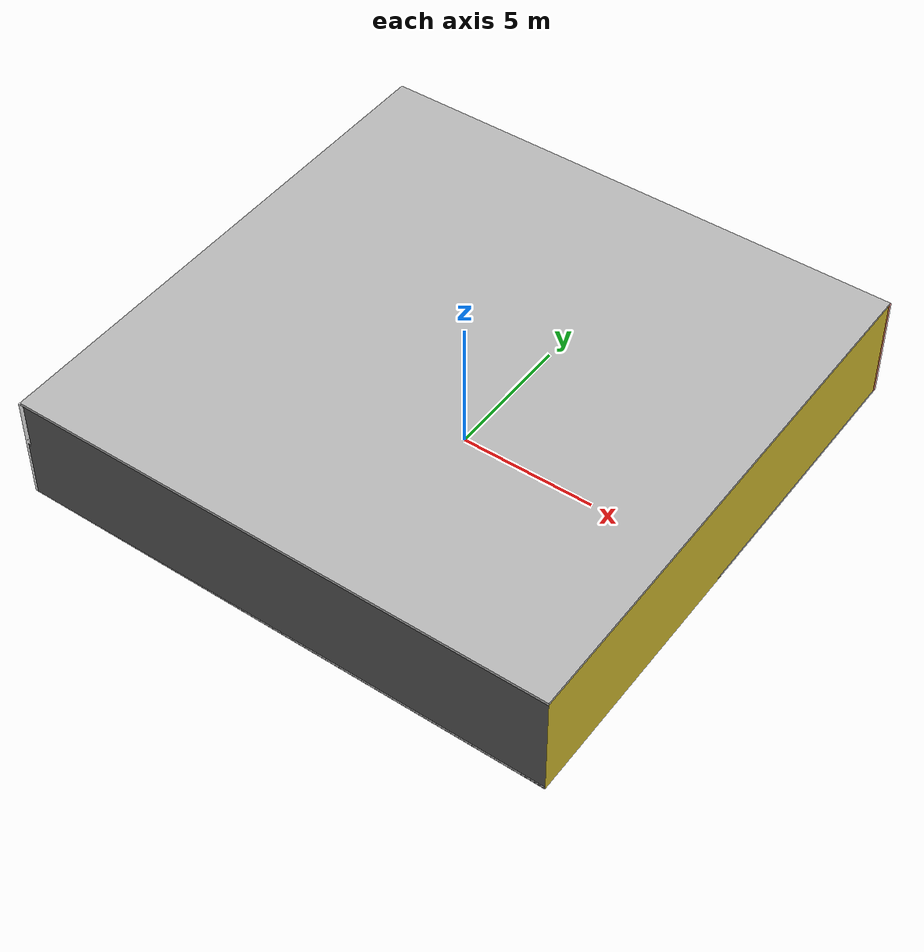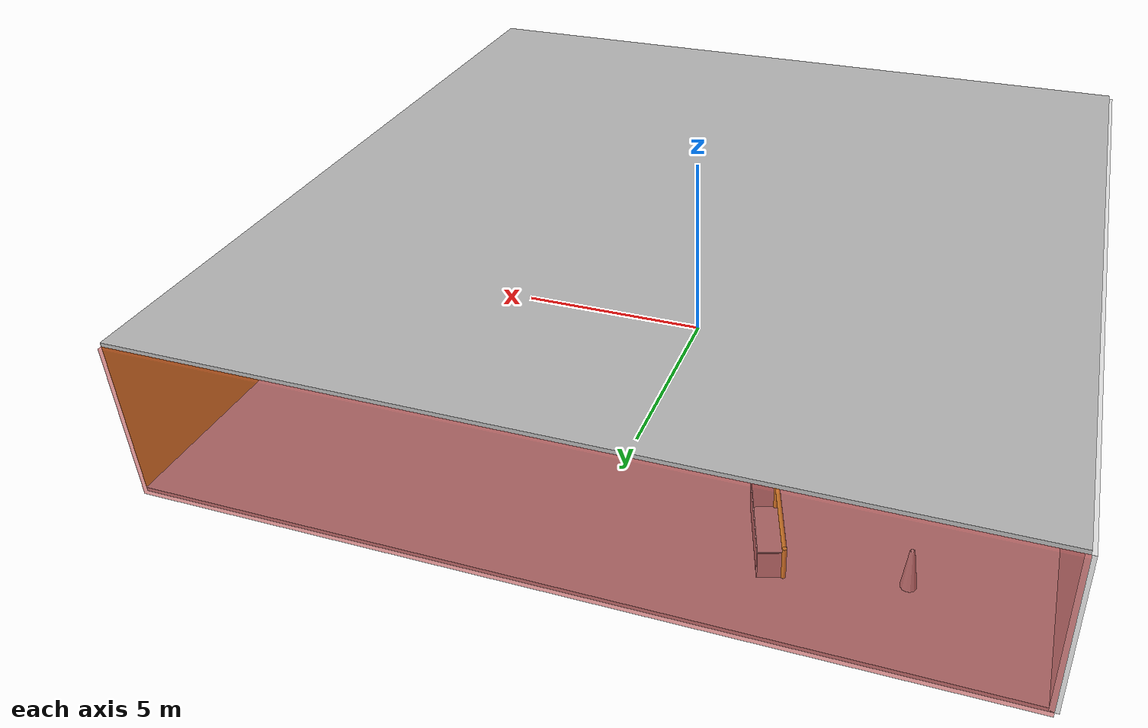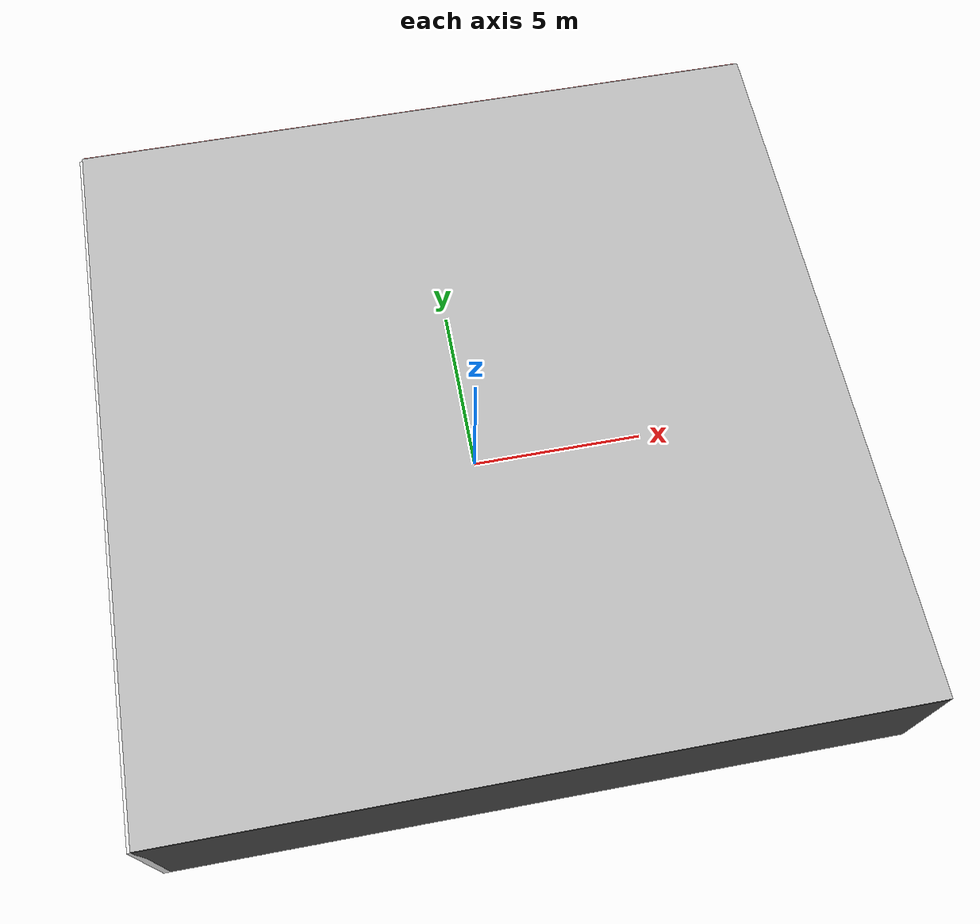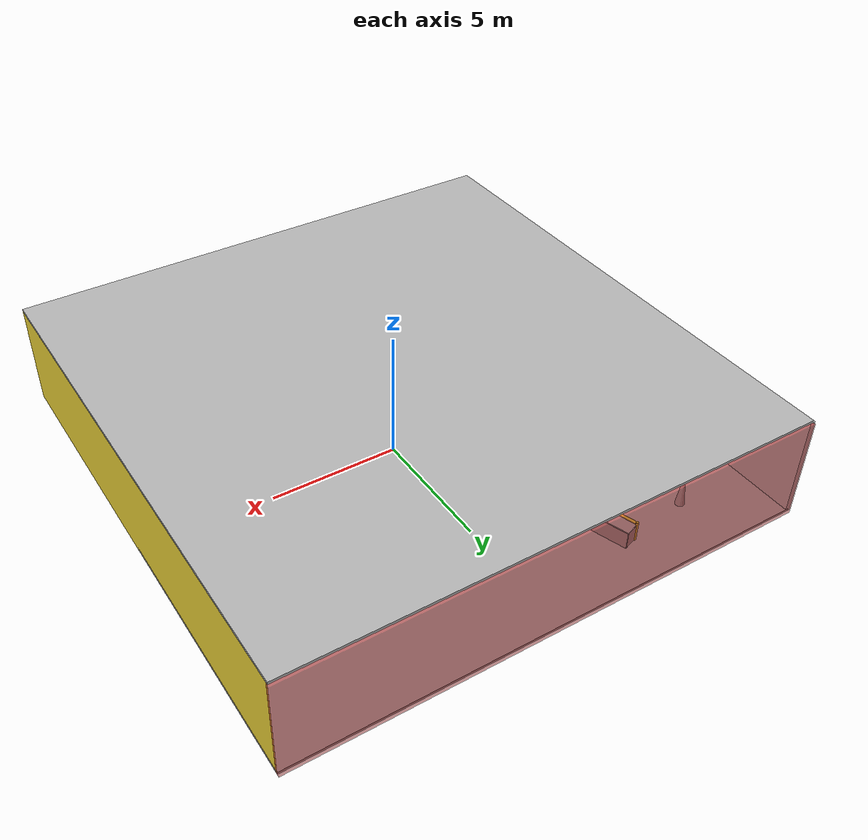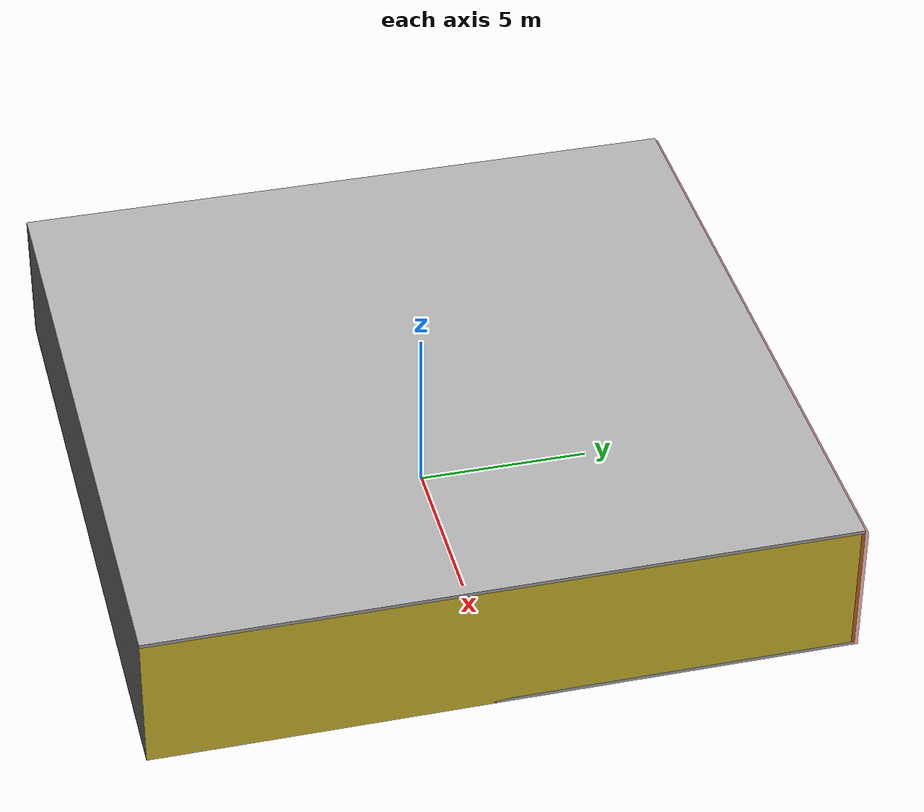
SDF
<sdf version="1.4">
 <world name="default">
  <physics type="ode">
   <max_step_size>0.001</max_step_size>
   <real_time_factor>1</real_time_factor>
   <real_time_update_rate>1000</real_time_update_rate>
   <gravity>0 0 -9.8</gravity>
  </physics>
  <scene><ambient>0.4 0.4 0.4 1</ambient><background>0.7 0.7 0.7 1</background><shadows>1</shadows></scene>
  <model name="Surrounding">
   <static>1</static>
   <link name="Ceiling">
    <collision name="Ceiling_Collision"><geometry><box><size>20 20 0.1</size></box></geometry></collision>
    <visual name="Ceiling_Visual">
     <geometry><box><size>20 20 0.1</size></box></geometry>
     <material>
      <script><uri>file://media/materials/scripts/gazebo.material</uri><name>Gazebo/LightOff</name></script>
     </material>
    </visual>
    <pose>0 0 4.05 0 0 0</pose>
   </link>
   <link name="Wall_South">
    <collision name="Wall_South_Collision">
     <geometry><box><size>20 0 4</size></box></geometry>
     <pose>0 0 2 0 -0 0</pose>
    </collision>
    <visual name="Wall_South_Visual">
     <pose>0 0 2 0 -0 0</pose>
     <geometry><box><size>20 0 4</size></box></geometry>
     <material>
      <script><uri>file://media/materials/scripts/gazebo.material</uri><name>Gazebo/Road</name></script>
     </material>
    </visual>
    <velocity_decay><linear>0</linear><angular>0</angular></velocity_decay>
    <pose>0 -10 0 0 -0 0</pose>
   </link>
   <link name="Wall_East">
    <collision name="Wall_21_Collision">
     <geometry><box><size>20 0 4</size></box></geometry>
     <pose>0 0 2 0 -0 0</pose>
    </collision>
    <visual name="Wall_21_Visual">
     <pose>0 0 2 0 -0 0</pose>
     <geometry><box><size>20 0 4</size></box></geometry>
     <material>
      <script><uri>file://media/materials/scripts/gazebo.material</uri><name>Gazebo/ZincYellow</name></script>
     </material>
    </visual>
    <velocity_decay><linear>0</linear><angular>0</angular></velocity_decay>
    <pose>10 0 0 0 -0 1.5708</pose>
   </link>
   <link name="Wall_North">
    <collision name="Wall_22_Collision">
     <geometry><box><size>20 0.2 4</size></box></geometry>
     <pose>0 0 2 0 -0 0</pose>
    </collision>
    <visual name="Wall_22_Visual">
     <pose>0 0 2 0 -0 0</pose>
     <geometry><box><size>20 0.2 4</size></box></geometry>
     <material>
      <script><uri>file://media/materials/scripts/gazebo.material</uri><name>Gazebo/RedTransparent</name></script>
     </material>
    </visual>
    <velocity_decay><linear>0</linear><angular>0</angular></velocity_decay>
    <pose>0 10 0 0 -0 0</pose>
   </link>
   <link name="Wall_West">
    <collision name="Wall_23_Collision">
     <geometry><box><size>20 0.2 4</size></box></geometry>
     <pose>0 0 2 0 -0 0</pose>
    </collision>
    <visual name="Wall_23_Visual">
     <pose>0 0 2 0 -0 0</pose>
     <geometry><box><size>20 0.2 4</size></box></geometry>
     <material>
      <script><uri>file://media/materials/scripts/gazebo.material</uri><name>Gazebo/WhiteGlow</name></script>
     </material>
    </visual>
    <velocity_decay><linear>0</linear><angular>0</angular></velocity_decay>
    <pose>-10 0 0 0 0 -1.5708</pose>
   </link>
   <link name="Ground_link">
    <collision name="collision">
     <pose>0 0 .05 0 -0 0</pose>
     <geometry><box><size>20 20 0.1</size></box></geometry>
    </collision>
    <visual name="visual">
     <pose>0 0 .05 0 -0 0</pose>
     <geometry><box><size>20 20 0.1</size></box></geometry>
     <material>
      <script><uri>file://media/materials/scripts/gazebo.material</uri><name>Gazebo/JointAnchor</name></script>
     </material>
    </visual>
   </link>
   <static>1</static>
  </model>
  <spherical_coordinates>
   <surface_model>EARTH_WGS84</surface_model>
   <latitude_deg>0</latitude_deg>
   <longitude_deg>0</longitude_deg>
   <elevation>0</elevation>
   <heading_deg>0</heading_deg>
  </spherical_coordinates>
  <light name="lightball_0" type="diffuse">
   <diffuse>0.8 0.8 0.8 1</diffuse>
   <specular>0.2 0.2 0.2 1</specular>
   <attenuation>
    <range>100</range>
    <constant>0.7</constant>
    <linear>0.01</linear>
    <quadratic>0.001</quadratic>
   </attenuation>
   <direction>-0.5 0.1 -0.9</direction>
   <pose>6.33025719886 -3.79489355418 3.47043424194 0 0 0</pose>
  </light>
  <light name="lightball_1" type="diffuse">
   <diffuse>0.8 0.8 0.8 1</diffuse>
   <specular>0.2 0.2 0.2 1</specular>
   <attenuation>
    <range>100</range>
    <constant>0.7</constant>
    <linear>0.01</linear>
    <quadratic>0.001</quadratic>
   </attenuation>
   <direction>-0.5 0.1 -0.9</direction>
   <pose>4.43413883532 4.91527111033 3.42931840254 0 0 0</pose>
  </light>
  <light name="lightball_2" type="diffuse">
   <diffuse>0.8 0.8 0.8 1</diffuse>
   <specular>0.2 0.2 0.2 1</specular>
   <attenuation>
    <range>100</range>
    <constant>0.7</constant>
    <linear>0.01</linear>
    <quadratic>0.001</quadratic>
   </attenuation>
   <direction>-0.5 0.1 -0.9</direction>
   <pose>-3.25845265102 1.5853432902 3.5491640003 0 0 0</pose>
  </light>
  <light name="lightball_3" type="diffuse">
   <diffuse>0.8 0.8 0.8 1</diffuse>
   <specular>0.2 0.2 0.2 1</specular>
   <attenuation>
    <range>100</range>
    <constant>0.7</constant>
    <linear>0.01</linear>
    <quadratic>0.001</quadratic>
   </attenuation>
   <direction>-0.5 0.1 -0.9</direction>
   <pose>-1.00716344959 3.91851382599 2.81964072328 0 0 0</pose>
  </light>
  <light name="lightball_4" type="diffuse">
   <diffuse>0.8 0.8 0.8 1</diffuse>
   <specular>0.2 0.2 0.2 1</specular>
   <attenuation>
    <range>100</range>
    <constant>0.7</constant>
    <linear>0.01</linear>
    <quadratic>0.001</quadratic>
   </attenuation>
   <direction>-0.5 0.1 -0.9</direction>
   <pose>6.5880117852 -0.309836805932 0.518855122626 0 0 0</pose>
  </light>
  <light name="lightball_5" type="diffuse">
   <diffuse>0.8 0.8 0.8 1</diffuse>
   <specular>0.2 0.2 0.2 1</specular>
   <attenuation>
    <range>100</range>
    <constant>0.7</constant>
    <linear>0.01</linear>
    <quadratic>0.001</quadratic>
   </attenuation>
   <direction>-0.5 0.1 -0.9</direction>
   <pose>-2.56542050036 4.62892108128 2.29940630748 0 0 0</pose>
  </light>
  <light name="lightball_6" type="diffuse">
   <diffuse>0.8 0.8 0.8 1</diffuse>
   <specular>0.2 0.2 0.2 1</specular>
   <attenuation>
    <range>100</range>
    <constant>0.7</constant>
    <linear>0.01</linear>
    <quadratic>0.001</quadratic>
   </attenuation>
   <direction>-0.5 0.1 -0.9</direction>
   <pose>9.12350846819 -2.69246186129 3.4586237958 0 0 0</pose>
  </light>
  <light name="lightball_7" type="diffuse">
   <diffuse>0.8 0.8 0.8 1</diffuse>
   <specular>0.2 0.2 0.2 1</specular>
   <attenuation>
    <range>100</range>
    <constant>0.7</constant>
    <linear>0.01</linear>
    <quadratic>0.001</quadratic>
   </attenuation>
   <direction>-0.5 0.1 -0.9</direction>
   <pose>-5.35034318157 -7.77112834932 2.95120816291 0 0 0</pose>
  </light>
  <light name="lightball_8" type="diffuse">
   <diffuse>0.8 0.8 0.8 1</diffuse>
   <specular>0.2 0.2 0.2 1</specular>
   <attenuation>
    <range>100</range>
    <constant>0.7</constant>
    <linear>0.01</linear>
    <quadratic>0.001</quadratic>
   </attenuation>
   <direction>-0.5 0.1 -0.9</direction>
   <pose>-4.48441329802 9.86526645748 1.58490935672 0 0 0</pose>
  </light>
  <light name="lightball_9" type="diffuse">
   <diffuse>0.8 0.8 0.8 1</diffuse>
   <specular>0.2 0.2 0.2 1</specular>
   <attenuation>
    <range>100</range>
    <constant>0.7</constant>
    <linear>0.01</linear>
    <quadratic>0.001</quadratic>
   </attenuation>
   <direction>-0.5 0.1 -0.9</direction>
   <pose>2.7051163439 6.89907767541 1.46822667801 0 0 0</pose>
  </light>
  <light name="lightball_10" type="diffuse">
   <diffuse>0.8 0.8 0.8 1</diffuse>
   <specular>0.2 0.2 0.2 1</specular>
   <attenuation>
    <range>100</range>
    <constant>0.7</constant>
    <linear>0.01</linear>
    <quadratic>0.001</quadratic>
   </attenuation>
   <direction>-0.5 0.1 -0.9</direction>
   <pose>3.60325159 -5.30909979492 0.611992849392 0 0 0</pose>
  </light>
  <light name="lightball_11" type="diffuse">
   <diffuse>0.8 0.8 0.8 1</diffuse>
   <specular>0.2 0.2 0.2 1</specular>
   <attenuation>
    <range>100</range>
    <constant>0.7</constant>
    <linear>0.01</linear>
    <quadratic>0.001</quadratic>
   </attenuation>
   <direction>-0.5 0.1 -0.9</direction>
   <pose>-4.37354606607 -0.649377477477 2.14306826535 0 0 0</pose>
  </light>
  <light name="lightball_12" type="diffuse">
   <diffuse>0.8 0.8 0.8 1</diffuse>
   <specular>0.2 0.2 0.2 1</specular>
   <attenuation>
    <range>100</range>
    <constant>0.7</constant>
    <linear>0.01</linear>
    <quadratic>0.001</quadratic>
   </attenuation>
   <direction>-0.5 0.1 -0.9</direction>
   <pose>-0.984042185994 -8.24348125868 0.675842336592 0 0 0</pose>
  </light>
  <light name="lightball_13" type="diffuse">
   <diffuse>0.8 0.8 0.8 1</diffuse>
   <specular>0.2 0.2 0.2 1</specular>
   <attenuation>
    <range>100</range>
    <constant>0.7</constant>
    <linear>0.01</linear>
    <quadratic>0.001</quadratic>
   </attenuation>
   <direction>-0.5 0.1 -0.9</direction>
   <pose>0.392444374703 -6.50344139853 3.37526897547 0 0 0</pose>
  </light>
  <include><uri>model://cabinet</uri><pose>-8.06255515094 -7.81619008425 0 0 0 0.264876480496</pose></include>
  <include>
   <uri>model://robocup_3Dsim_goal</uri>
   <pose>-8.12718518491 1.02566275497 0 0 0 1.01190101743</pose>
  </include>
  <include>
   <uri>model://construction_cone</uri>
   <pose>-6.97086580249 7.79877108498 0 0 0 0.387297096726</pose>
  </include>
  <include><uri>model://cabinet</uri><pose>-4.20169855491 1.94232163405 0 0 0 0.859626931332</pose></include>
  <include>
   <uri>model://robocup_3Dsim_goal</uri>
   <pose>-4.12518669425 7.32582007275 0 0 0 0.323085528373</pose>
  </include>
  <include><uri>model://cabinet</uri><pose>-2.01753147302 -4.28888262099 0 0 0 2.79541309975</pose></include>
  <include><uri>model://cabinet</uri><pose>1.55332205277 4.13919092238 0 0 0 0.917292742984</pose></include>
  <include>
   <uri>model://construction_cone</uri>
   <pose>7.90637827802 5.2484936388 0 0 0 0.121408947638</pose>
  </include>
 </world>
</sdf>

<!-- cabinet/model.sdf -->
<sdf version="1.5">
  <model name="cabinet">
    <static>true</static>
    <link name="cabinet_bottom_plate">
      <inertial>
        <pose>0 0 -1 0 0 0</pose>
        <inertia>
          <ixx>2.050000</ixx>
          <ixy>0</ixy>
          <ixz>0</ixz>
          <iyy>2.050000</iyy>
          <iyz>0</iyz>
          <izz>2.050000</izz>
        </inertia>
        <mass>25.000000</mass>
      </inertial>
      <collision name="cabinet_bottom_plate_geom">
        <pose>0 0 0.010000 0 0 0</pose>
        <geometry>
          <box>
            <size>0.450000 0.450000 0.020000</size>
          </box>
        </geometry>
      </collision>
      <visual name="cabinet_bottom_plate_geom_visual">
        <pose>0 0 0.010000 0 0 0</pose>
        <geometry>
          <box>
            <size>0.450000 0.450000 0.020000</size>
          </box>
        </geometry>
        <material>
          <script>
            <uri>model://media/materials/scripts/gazebo.material</uri>
            <name>Gazebo/Wood</name>
          </script>
        </material>
      </visual>
      <collision name="cabinet_bottom_plate_geom_cabinet_back_plate">
        <pose>0.235000 0 0.510000 0 0 0</pose>
        <geometry>
          <box>
            <size>0.020000 0.450000 1.020000</size>
          </box>
        </geometry>
      </collision>
      <visual name="cabinet_bottom_plate_geom_cabinet_back_plate_visual">
        <pose>0.235000 0 0.510000 0 0 0</pose>
        <geometry>
          <box>
            <size>0.020000 0.450000 1.020000</size>
          </box>
        </geometry>
        <material>
          <script>
            <uri>model://media/materials/scripts/gazebo.material</uri>
            <name>Gazebo/Wood</name>
          </script>
        </material>
      </visual>
      <collision name="cabinet_bottom_plate_geom_cabinet_left_plate">
        <pose>0 0.235000 0.510000 0 0 0</pose>
        <geometry>
          <box>
            <size>0.450000 0.020000 1.020000</size>
          </box>
        </geometry>
      </collision>
      <visual name="cabinet_bottom_plate_geom_cabinet_left_plate_visual">
        <pose>0 0.235000 0.510000 0 0 0</pose>
        <geometry>
          <box>
            <size>0.450000 0.020000 1.020000</size>
          </box>
        </geometry>
        <material>
          <script>
            <uri>model://media/materials/scripts/gazebo.material</uri>
            <name>Gazebo/Wood</name>
          </script>
        </material>
      </visual>
      <collision name="cabinet_bottom_plate_geom_cabinet_middle_plate">
        <pose>0 0 0.510000 0 0 0</pose>
        <geometry>
          <box>
            <size>0.450000 0.450000 0.020000</size>
          </box>
        </geometry>
      </collision>
      <visual name="cabinet_bottom_plate_geom_cabinet_middle_plate_visual">
        <pose>0 0 0.510000 0 0 0</pose>
        <geometry>
          <box>
            <size>0.450000 0.450000 0.020000</size>
          </box>
        </geometry>
        <material>
          <script>
            <uri>model://media/materials/scripts/gazebo.material</uri>
            <name>Gazebo/Wood</name>
          </script>
        </material>
      </visual>
      <collision name="cabinet_bottom_plate_geom_cabinet_right_plate">
        <pose>0 -0.235000 0.510000 0 0 0</pose>
        <geometry>
          <box>
            <size>0.450000 0.020000 1.020000</size>
          </box>
        </geometry>
      </collision>
      <visual name="cabinet_bottom_plate_geom_cabinet_right_plate_visual">
        <pose>0 -0.235000 0.510000 0 0 0</pose>
        <geometry>
          <box>
            <size>0.450000 0.020000 1.020000</size>
          </box>
        </geometry>
        <material>
          <script>
            <uri>model://media/materials/scripts/gazebo.material</uri>
            <name>Gazebo/Wood</name>
          </script>
        </material>
      </visual>
      <collision name="cabinet_bottom_plate_geom_cabinet_top_plate">
        <pose>0 0 1.010000 0 0 0</pose>
        <geometry>
          <box>
            <size>0.450000 0.450000 0.020000</size>
          </box>
        </geometry>
      </collision>
      <visual name="cabinet_bottom_plate_geom_cabinet_top_plate_visual">
        <pose>0 0 1.010000 0 0 0</pose>
        <geometry>
          <box>
            <size>0.450000 0.450000 0.020000</size>
          </box>
        </geometry>
        <material>
          <script>
            <uri>model://media/materials/scripts/gazebo.material</uri>
            <name>Gazebo/Wood</name>
          </script>
        </material>
      </visual>
    </link>
  </model>
</sdf>

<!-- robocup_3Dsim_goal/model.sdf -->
<sdf version="1.5">
  <model name="robocup_3d_goal">
    <static>true</static>
    <link name="left_post">
      <pose>0 1.05 0.45 0 0 0</pose>
      <collision name="collision">
        <geometry>
          <cylinder>
            <radius>0.05</radius>
            <length>0.9</length>
          </cylinder>
        </geometry>
      </collision>
      <visual name="visual">
        <geometry>
          <cylinder>
            <radius>0.05</radius>
            <length>0.9</length>
          </cylinder>
        </geometry>
        <material>
          <script>
            <uri>file://media/materials/scripts/gazebo.material</uri>
            <name>Gazebo/ZincYellow</name>
          </script>
        </material>
      </visual>
    </link>
    <link name="left_support_horiz_lower">
      <pose>0.30 1.05 0.01 0 0 0</pose>
      <collision name="collision">
        <geometry>
          <box>
            <size>0.50 0.02 0.02</size>
          </box>
        </geometry>
      </collision>
      <visual name="visual">
        <geometry>
          <box>
            <size>0.50 0.02 0.02</size>
          </box>
        </geometry>
        <material>
          <script>
            <uri>file://media/materials/scripts/gazebo.material</uri>
            <name>Gazebo/White</name>
          </script>
        </material>
      </visual>
    </link>
    <link name="left_support_horiz_upper">
      <pose>0.30 1.05 0.79 0 0 0</pose>
      <collision name="collision">
        <geometry>
          <box>
            <size>0.50 0.02 0.02</size>
          </box>
        </geometry>
      </collision>
      <visual name="visual">
        <geometry>
          <box>
            <size>0.50 0.02 0.02</size>
          </box>
        </geometry>
        <material>
          <script>
            <uri>file://media/materials/scripts/gazebo.material</uri>
            <name>Gazebo/White</name>
          </script>
        </material>
      </visual>
    </link>
    <link name="left_support_vertical">
      <pose>0.56 1.05 0.4 0 1.5708 0</pose>
      <collision name="collision">
        <geometry>
          <box>
            <size>0.80 0.02 0.02</size>
          </box>
        </geometry>
      </collision>
      <visual name="visual">
        <geometry>
          <box>
            <size>0.80 0.02 0.02</size>
          </box>
        </geometry>
        <material>
          <script>
            <uri>file://media/materials/scripts/gazebo.material</uri>
            <name>Gazebo/White</name>
          </script>
        </material>
      </visual>
    </link>
    <link name="right_support_horiz_lower">
      <pose>0.30 -1.05 0.01 0 0 0</pose>
      <collision name="collision">
        <geometry>
          <box>
            <size>0.50 0.02 0.02</size>
          </box>
        </geometry>
      </collision>
      <visual name="visual">
        <geometry>
          <box>
            <size>0.50 0.02 0.02</size>
          </box>
        </geometry>
        <material>
          <script>
            <uri>file://media/materials/scripts/gazebo.material</uri>
            <name>Gazebo/White</name>
          </script>
        </material>
      </visual>
    </link>
    <link name="right_support_horiz_upper">
      <pose>0.30 -1.05 0.79 0 0 0</pose>
      <collision name="collision">
        <geometry>
          <box>
            <size>0.50 0.02 0.02</size>
          </box>
        </geometry>
      </collision>
      <visual name="visual">
        <geometry>
          <box>
            <size>0.50 0.02 0.02</size>
          </box>
        </geometry>
        <material>
          <script>
            <uri>file://media/materials/scripts/gazebo.material</uri>
            <name>Gazebo/White</name>
          </script>
        </material>
      </visual>
    </link>
    <link name="right_support_vertical">
      <pose>0.56 -1.05 0.4 0 1.5708 0</pose>
      <collision name="collision">
        <geometry>
          <box>
            <size>0.80 0.02 0.02</size>
          </box>
        </geometry>
      </collision>
      <visual name="visual">
        <geometry>
          <box>
            <size>0.80 0.02 0.02</size>
          </box>
        </geometry>
        <material>
          <script>
            <uri>file://media/materials/scripts/gazebo.material</uri>
            <name>Gazebo/White</name>
          </script>
        </material>
      </visual>
    </link>
    <link name="center_support_horiz_lower">
      <pose>0.56 0 0.01 0 1.5708 0</pose>
      <collision name="collision">
        <geometry>
          <box>
            <size>0.02 2.08 0.02</size>
          </box>
        </geometry>
      </collision>
      <visual name="visual">
        <geometry>
          <box>
            <size>0.02 2.08 0.02</size>
          </box>
        </geometry>
        <material>
          <script>
            <uri>file://media/materials/scripts/gazebo.material</uri>
            <name>Gazebo/White</name>
          </script>
        </material>
      </visual>
    </link>
    <link name="center_support_horiz_upper">
      <pose>0.56 0 0.79 0 1.5708 0</pose>
      <collision name="collision">
        <geometry>
          <box>
            <size>0.02 2.08 0.02</size>
          </box>
        </geometry>
      </collision>
      <visual name="visual">
        <geometry>
          <box>
            <size>0.02 2.08 0.02</size>
          </box>
        </geometry>
        <material>
          <script>
            <uri>file://media/materials/scripts/gazebo.material</uri>
            <name>Gazebo/White</name>
          </script>
        </material>
      </visual>
    </link>
    <link name="right_post">
      <pose>0 -1.05 0.45 0 0 0</pose>
      <collision name="collision">
        <geometry>
          <cylinder>
            <radius>0.05</radius>
            <length>0.9</length>
          </cylinder>
        </geometry>
      </collision>
      <visual name="visual">
        <geometry>
          <cylinder>
            <radius>0.05</radius>
            <length>0.9</length>
          </cylinder>
        </geometry>
        <material>
          <script>
            <uri>file://media/materials/scripts/gazebo.material</uri>
            <name>Gazebo/ZincYellow</name>
          </script>
        </material>
      </visual>
    </link>
    <link name="crossbar">
      <pose>0 0 0.85 1.57 1.57 0</pose>
      <collision name="collision">
        <geometry>
          <cylinder>
            <radius>0.05</radius>
            <length>2.0</length>
          </cylinder>
        </geometry>
      </collision>
      <visual name="visual">
        <geometry>
          <cylinder>
            <radius>0.05</radius>
            <length>2.0</length>
          </cylinder>
        </geometry>
        <material>
          <script>
            <uri>file://media/materials/scripts/gazebo.material</uri>
            <name>Gazebo/ZincYellow</name>
          </script>
        </material>
      </visual>
    </link>
    <link name="center_net">
      <pose>0.56 0 0.40 0 0 0</pose>
      <collision name="collision">
        <geometry>
          <box>
            <size>0.01 2.1 0.80</size>
          </box>
        </geometry>
      </collision>
      <visual name="visual">
        <geometry>
          <box>
            <size>0.01 2.1 0.80</size>
          </box>
        </geometry>
        <material>
          <script>
            <uri>model://../model_source/models/robocup09_spl_field/materials/scripts/</uri>
            <uri>model://../model_source/models/robocup09_spl_field/materials/textures/</uri>
            <name>RoboCup/Net</name>
          </script>
        </material>
      </visual>
    </link>
    <link name="left_net">
      <pose>0.30 1.05 0.40 0 0 0</pose>
      <collision name="collision">
        <geometry>
          <box>
            <size>0.50 0.01 0.76</size>
          </box>
        </geometry>
      </collision>
      <visual name="visual">
        <geometry>
          <box>
            <size>0.50 0.01 0.76</size>
          </box>
        </geometry>
        <material>
          <script>
            <uri>model://../model_source/models/robocup09_spl_field/materials/scripts/</uri>
            <uri>model://../model_source/models/robocup09_spl_field/materials/textures/</uri>
            <name>RoboCup/Net</name>
          </script>
        </material>
      </visual>
    </link>
    <link name="right_net">
      <pose>0.30 -1.05 0.40 0 0 0</pose>
      <collision name="collision">
        <geometry>
          <box>
            <size>0.50 0.01 0.76</size>
          </box>
        </geometry>
      </collision>
      <visual name="visual">
        <geometry>
          <box>
            <size>0.50 0.01 0.76</size>
          </box>
        </geometry>
        <material>
          <script>
            <uri>model://../model_source/models/robocup09_spl_field/materials/scripts/</uri>
            <uri>model://../model_source/models/robocup09_spl_field/materials/textures/</uri>
            <name>RoboCup/Net</name>
          </script>
        </material>
      </visual>
    </link>
  </model>
</sdf>

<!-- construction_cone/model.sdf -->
<sdf version="1.5">
  <model name="Construction Cone">
    <link name="link">
      <collision name="collision">
        <geometry>
          <mesh>
            <scale>10 10 10</scale>
            <uri>file://isr-testbed/construction_cone/meshes/construction_cone.dae</uri>
          </mesh>
        </geometry>
      </collision>
      <visual name="visual">
        <geometry>
          <mesh>
            <scale>10 10 10</scale>
            <uri>file://isr-testbed/construction_cone/meshes/construction_cone.dae</uri>
          </mesh>
        </geometry>
      </visual>
    </link>
  </model>
</sdf>
